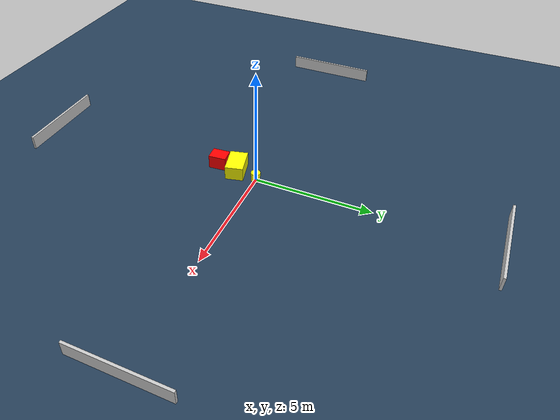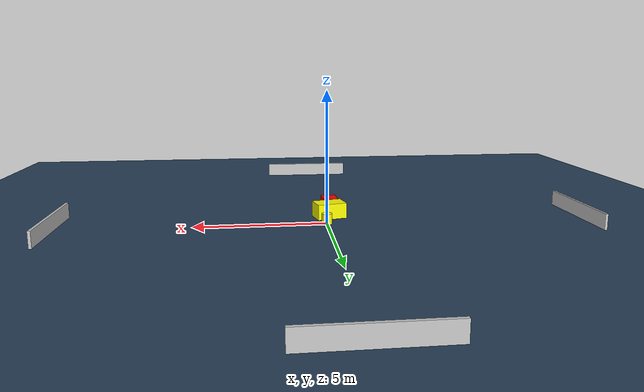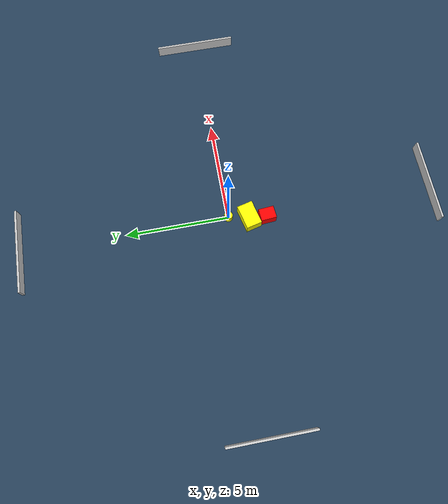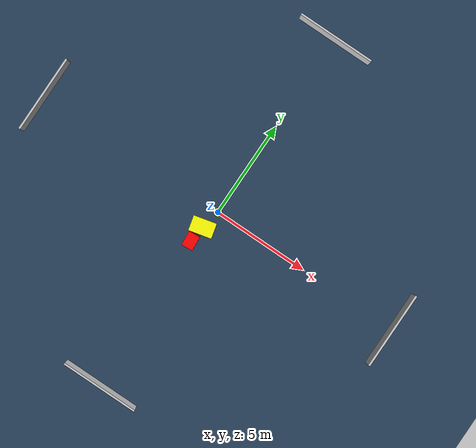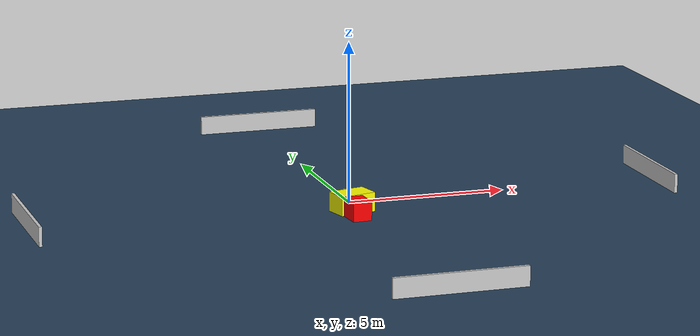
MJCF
<?xml version="1.0" ?>
<mujoco model="generated_environment">
  <option timestep="0.01" integrator="RK4" cone="elliptic"/>
  <default>
    <geom density="1"/>
  </default>
  <asset>
    <texture builtin="gradient" height="3072" name="skybox" rgb1="0.3 0.5 0.7" rgb2="0 0 0" type="skybox" width="512"/>
    <texture builtin="checker" height="300" name="groundplane" rgb1="0.2 0.3 0.4" rgb2="0.1 0.2 0.3" type="2d" width="300"/>
    <material name="groundplane" reflectance="0.2" texrepeat="5 5" texture="groundplane"/>
  </asset>
  <worldbody>
    <light dir="0 0 -1" directional="true" pos="0 0 1.5"/>
    <geom condim="3" friction="0.5 0.005 0.001" material="groundplane" name="floor" pos="0 0 0" size="0 0 0.05" type="plane"/>
    <body name="walls">
      <geom name="wall_1" condim="4" pos="-10.0 0.0 0.3" rgba="0.800000011920929 0.800000011920929 0.800000011920929 1.0" size="0.05 2.0 0.3" type="box"/>
      <geom name="wall_2" condim="4" pos="10.0 0.0 0.3" rgba="0.800000011920929 0.800000011920929 0.800000011920929 1.0" size="0.05 2.0 0.3" type="box"/>
      <geom name="wall_3" condim="4" pos="0.0 -10.0 0.3" rgba="0.800000011920929 0.800000011920929 0.800000011920929 1.0" size="2.0 0.05 0.3" type="box"/>
      <geom name="wall_4" condim="4" pos="0.0 10.0 0.3" rgba="0.800000011920929 0.800000011920929 0.800000011920929 1.0" size="2.0 0.05 0.3" type="box"/>
    </body>
    <body name="robot">
      <joint name="joint_x" type="slide" pos="0 0 0" axis="1 0 0"/>
      <joint name="joint_y" type="slide" pos="0 0 0" axis="0 1 0"/>
      <geom name="robot" type="cylinder" pos="0.0 0.0 0.2" size="0.2 0.2 0.0" mass="5.0" friction="1.0 0.005 0.0001" condim="4" rgba="1.0 1.0 0.0 1.0"/>
    </body>
    <body name="obstacle_1_movable">
      <geom name="obstacle_1_movable" condim="4" pos="-0.21169021838030455 -0.9784120168162415 0.3" euler="0 0 193.53199612482015" friction="0.0 0.005 0.001" rgba="1.0 1.0 0.0 1.0" size="0.5848439603894745 0.38262869450372006 0.3" type="box" mass="0.1"/>
      <joint type="free"/>
    </body>
    <body name="obstacle_2_static">
      <geom name="obstacle_2_static" condim="4" pos="-0.3084671175949061 -1.8359059814873728 0.3" euler="0 0 184.72167562174116" friction="0.0 0.005 0.001" rgba="1.0 0.0 0.0 1.0" size="0.29436213363357117 0.3739464253077675 0.3" type="box"/>
    </body>
  </worldbody>
  <actuator>
    <motor name="actuator_x" joint="joint_x" gear="1" ctrlrange="-1 1"/>
    <motor name="actuator_y" joint="joint_y" gear="1" ctrlrange="-1 1"/>
  </actuator>
</mujoco>
